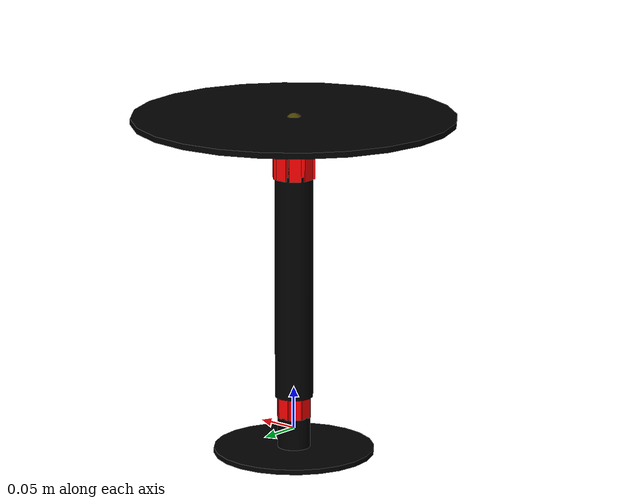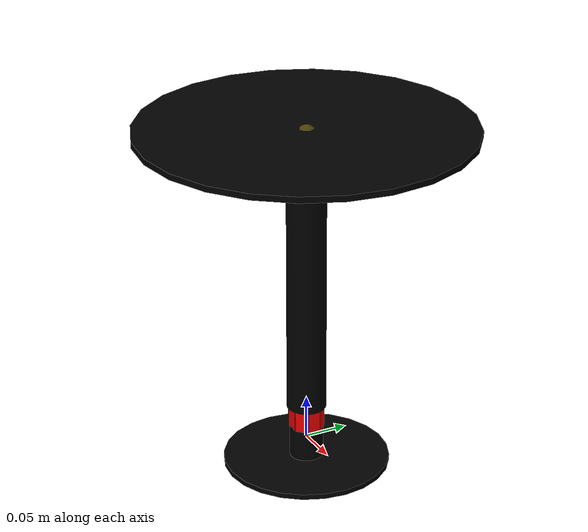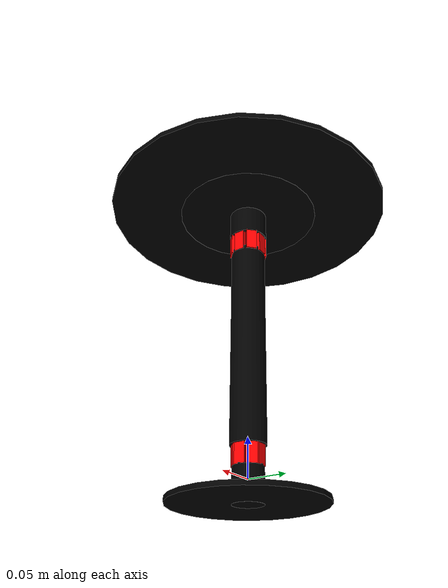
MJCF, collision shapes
<mujoco model="table_dockstra_0279">
  <custom>
    <numeric data="-0.332024 -0.069709 0.02821 0.999971 -0.0 -0.0 0.007559" name="0_part0_initpos" />
    <numeric data="-0.112954 -0.076936 0.026272 0.0 1.0 -9.4e-05 0.0" name="3_part3_initpos" />
    <numeric data="-0.316383 0.24 0.003274 0.0 0.082519 0.99659 0.0" name="2_part2_initpos" />
    <numeric data="0.01172 0.107275 0.022457 0.583591 -0.47236 0.52619 -0.399276" name="1_part1_initpos" />
  </custom>
  <asset>
    <mesh file="table_dockstra_0279/0.stl" name="part0" scale="0.0005 0.0005 0.0005" />
    <mesh file="table_dockstra_0279/3.stl" name="part3" scale="0.0005 0.0005 0.0005" />
    <mesh file="table_dockstra_0279/2.stl" name="part2" scale="0.0005 0.0005 0.0005" />
    <mesh file="table_dockstra_0279/1.stl" name="part1" scale="0.0005 0.0005 0.0005" />
  </asset>
  <equality>
    <weld active="false" body1="0_part0" body2="1_part1" solimp="1 1 0.5" solref="0.01 0.3" />
    <weld active="false" body1="3_part3" body2="1_part1" solimp="1 1 0.5" solref="0.01 0.3" />
    <weld active="false" body1="3_part3" body2="2_part2" solimp="1 1 0.5" solref="0.01 0.3" />
  </equality>
  <worldbody>
    <body name="0_part0" pos="-6.5e-10 2.5e-10 -2e-10" quat="1 0 0 0">
      <geom conaffinity="0" contype="0" density="0" mesh="part0" name="0_part0_mesh" pos="0.0 0.0 0.0" rgba="0.82 0.71 0.55 1" type="mesh" />
      <site name="0_part0_horizontal_radius_site" pos="0 0 0" quat="1 0 0 0" rgba="0 0 0 0" size="0.01" />
      <site name="0_part0_top_site" pos="0 0 0.0285" quat="1 0 0 0" rgba="0 0 0 0" size="0.01" />
      <site name="0_part0_bottom_site" pos="0 0 -0.0285" quat="1 0 0 0" rgba="0 0 0 0" size="0.01" />
      <site name="0_part0_corner_site8" pos="-0.09525 0.09525 0.02857" quat="1 0 0 0" rgba="0 0 0 0" size="0.01" />
      <site name="0_part0_corner_site7" pos="0.09525 0.09525 0.02857" quat="1 0 0 0" rgba="0 0 0 0" size="0.01" />
      <site name="0_part0_corner_site6" pos="0.09525 -0.09525 0.02857" quat="1 0 0 0" rgba="0 0 0 0" size="0.01" />
      <site name="0_part0_corner_site5" pos="-0.09525 -0.09525 0.02857" quat="1 0 0 0" rgba="0 0 0 0" size="0.01" />
      <site name="0_part0_corner_site4" pos="-0.09525 0.09525 -0.02857" quat="1 0 0 0" rgba="0 0 0 0" size="0.01" />
      <site name="0_part0_corner_site3" pos="0.09525 0.09525 -0.02857" quat="1 0 0 0" rgba="0 0 0 0" size="0.01" />
      <site name="0_part0_corner_site2" pos="0.09525 -0.09525 -0.02857" quat="1 0 0 0" rgba="0 0 0 0" size="0.01" />
      <site name="0_part0_corner_site1" pos="-0.09525 -0.09525 -0.02857" quat="1 0 0 0" rgba="0 0 0 0" size="0.01" />
      <site name="base-column,conn_site1" pos="0.0 0 0.0295" quat="1 0 0 0" rgba="0.9019 0.0980 0.2941 0.3" size="0.01" />
      <geom density="50" name="noviz_collision_0_part0_0" pos="0 0 -0.0252" quat="1 0 0 0" rgba="0 0 0 0" size="0.09525 0.003" solref="0.001 1" type="cylinder" />
      <geom density="50" name="noviz_collision_0_part0_1" pos="0 0 -0.00625" quat="1 0 0 0" rgba="0 0 0 0" size="0.01925 0.022" solref="0.001 1" type="cylinder" />
      <geom density="50" name="noviz_collision_0_part0_2" pos="0 0 0.022" quat="1 0 0 0" rgba="0 0 0 0" size="0.013 0.0075" solref="0.001 1" type="cylinder" />
    </body>
    <body name="3_part3" pos="0 0 0.3468" quat="1 0 0 0">
      <geom conaffinity="0" contype="0" density="0" mesh="part3" name="3_part3_mesh" pos="0.0 0.0 0.0" rgba="0.82 0.71 0.55 1" type="mesh" />
      <site group="1" name="3_part3_ltgt_site0" pos="0.02 0 -0.3" rgba="0 0 0 0" size="0.01 0.01 0.01" type="sphere" />
      <site group="1" name="3_part3_rtgt_site0" pos="-0.02 0 -0.3" rgba="0 0 0 0" size="0.01 0.01 0.01" type="sphere" />
      <site name="3_part3_horizontal_radius_site" pos="0.0 -0.0 0.0" quat="1 0 0 0" rgba="0 0 0 0" size="0.01" />
      <site name="3_part3_top_site" pos="0.0 0.0 0.02619" quat="1 0 0 0" rgba="0 0 0 0" size="0.01" />
      <site name="3_part3_bottom_site" pos="0.0 0.0 -0.02619" quat="1 0 0 0" rgba="0 0 0 0" size="0.01" />
      <site name="3_part3_corner_site8" pos="-0.09525 0.09525 0.02619" quat="1 0 0 0" rgba="0 0 0 0" size="0.01" />
      <site name="3_part3_corner_site7" pos="0.09525 0.09525 0.02619" quat="1 0 0 0" rgba="0 0 0 0" size="0.01" />
      <site name="3_part3_corner_site6" pos="0.09525 -0.09525 0.02619" quat="1 0 0 0" rgba="0 0 0 0" size="0.01" />
      <site name="3_part3_corner_site5" pos="-0.09525 -0.09525 0.02619" quat="1 0 0 0" rgba="0 0 0 0" size="0.01" />
      <site name="3_part3_corner_site4" pos="-0.09525 0.09525 -0.02619" quat="1 0 0 0" rgba="0 0 0 0" size="0.01" />
      <site name="3_part3_corner_site3" pos="0.09525 0.09525 -0.02619" quat="1 0 0 0" rgba="0 0 0 0" size="0.01" />
      <site name="3_part3_corner_site2" pos="0.09525 -0.09525 -0.02619" quat="1 0 0 0" rgba="0 0 0 0" size="0.01" />
      <site name="3_part3_corner_site1" pos="-0.09525 -0.09525 -0.02619" quat="1 0 0 0" rgba="0 0 0 0" size="0.01" />
      <site name="topsupp-column,conn_site2" pos="0.0 0.0 -0.0275" quat="1 0 0 0" rgba="0.2352 0.7058 0.2941 0.3" size="0.01" />
      <site name="topsupp-topplane,conn_site1" pos="0.0 0.0 0.0254" quat="1 0 0 0" rgba="1.0 0.8823 0.0980 0.3" size="0.01" />
      <geom density="50" name="noviz_collision_3_part3_0" pos="0 0 0.0253" quat="1 0 0 0" rgba="0 0 0 0" size="0.095 0.001" solref="0.001 1" type="cylinder" />
      <geom density="50" name="noviz_collision_3_part3_1" pos="0 0 0.00528125" quat="1 0 0 0" rgba="0 0 0 0" size="0.025 0.019" solref="0.001 1" type="cylinder" />
      <geom density="50" name="noviz_collision_3_part3_2" pos="0 0 -0.02" quat="1 0 0 0" rgba="0 0 0 0" size="0.013 0.0075" solref="0.001 1" type="cylinder" />
    </body>
    <body name="2_part2" pos="0 0 0.3746500065" quat="1 0 0 0">
      <geom conaffinity="0" contype="0" density="0" mesh="part2" name="2_part2_mesh" pos="0.0 0.0 0.0" rgba="0.82 0.71 0.55 1" type="mesh" />
      <site name="2_part2_horizontal_radius_site" pos="-6.5e-10 0.0 0.0" quat="1 0 0 0" rgba="0 0 0 0" size="0.01" />
      <site name="2_part2_top_site" pos="0 0.0 0.003175" quat="1 0 0 0" rgba="0 0 0 0" size="0.01" />
      <site name="2_part2_bottom_site" pos="0 0.0 -0.003175" quat="1 0 0 0" rgba="0 0 0 0" size="0.01" />
      <site name="2_part2_corner_site8" pos="-0.1905 0.1905 0.003175" quat="1 0 0 0" rgba="0 0 0 0" size="0.01" />
      <site name="2_part2_corner_site7" pos="0.1905 0.1905 0.003175" quat="1 0 0 0" rgba="0 0 0 0" size="0.01" />
      <site name="2_part2_corner_site6" pos="0.1905 -0.1905 0.003175" quat="1 0 0 0" rgba="0 0 0 0" size="0.01" />
      <site name="2_part2_corner_site5" pos="-0.1905 -0.1905 0.003175" quat="1 0 0 0" rgba="0 0 0 0" size="0.01" />
      <site name="2_part2_corner_site4" pos="-0.1905 0.1905 -0.003175" quat="1 0 0 0" rgba="0 0 0 0" size="0.01" />
      <site name="2_part2_corner_site3" pos="0.1905 0.1905 -0.003175" quat="1 0 0 0" rgba="0 0 0 0" size="0.01" />
      <site name="2_part2_corner_site2" pos="0.1905 -0.1905 -0.003175" quat="1 0 0 0" rgba="0 0 0 0" size="0.01" />
      <site name="2_part2_corner_site1" pos="-0.1905 -0.1905 -0.003175" quat="1 0 0 0" rgba="0 0 0 0" size="0.01" />
      <site name="topplane-topsupp,conn_site1" pos="0.0 0.0 -0.0035" quat="1 0 0 0" rgba="1.0 0.8823 0.0980 0.3" size="0.01" />
      <geom density="50" name="noviz_collision_2_part2_0" pos="0 0 0" quat="1 0 0 0" rgba="0 0 0 0" size="0.1905 0.0035" solref="0.001 1" type="cylinder" />
    </body>
    <body name="1_part1" pos="0 0 0.17462500035" quat="1 0 0 0">
      <geom conaffinity="0" contype="0" density="0" mesh="part1" name="1_part1_mesh" pos="0.0 0.0 0.0" rgba="0.82 0.71 0.55 1" type="mesh" />
      <site group="1" name="1_part1_ltgt_site0" pos="0.02 0 0.01" rgba="0 0 0 0" size="0.01 0.01 0.01" type="sphere" />
      <site group="1" name="1_part1_rtgt_site0" pos="-0.02 0 0.01" rgba="0 0 0 0" size="0.01 0.01 0.01" type="sphere" />
      <site group="1" name="1_part1_ltgt_site1" pos="0.02 0 -0.1" rgba="0 0 0 0" size="0.01 0.01 0.01" type="sphere" />
      <site group="1" name="1_part1_rtgt_site1" pos="-0.02 0 -0.1" rgba="0 0 0 0" size="0.01 0.01 0.01" type="sphere" />
      <site name="1_part1_horizontal_radius_site" pos="0.0 0.0 0.0" quat="1 0 0 0" rgba="0 0 0 0" size="0.01" />
      <site name="1_part1_top_site" pos="0.0 0.0 0.15875" quat="1 0 0 0" rgba="0 0 0 0" size="0.01" />
      <site name="1_part1_bottom_site" pos="0.0 0.0 -0.15875" quat="1 0 0 0" rgba="0 0 0 0" size="0.01" />
      <site name="1_part1_corner_site8" pos="-0.02632 0.02632 0.15875" quat="1 0 0 0" rgba="0 0 0 0" size="0.01" />
      <site name="1_part1_corner_site7" pos="0.02632 0.02632 0.15875" quat="1 0 0 0" rgba="0 0 0 0" size="0.01" />
      <site name="1_part1_corner_site6" pos="0.02632 -0.02632 0.15875" quat="1 0 0 0" rgba="0 0 0 0" size="0.01" />
      <site name="1_part1_corner_site5" pos="-0.02632 -0.02632 0.15875" quat="1 0 0 0" rgba="0 0 0 0" size="0.01" />
      <site name="1_part1_corner_site4" pos="-0.02632 0.02632 -0.15875" quat="1 0 0 0" rgba="0 0 0 0" size="0.01" />
      <site name="1_part1_corner_site3" pos="0.02632 0.02632 -0.15875" quat="1 0 0 0" rgba="0 0 0 0" size="0.01" />
      <site name="1_part1_corner_site2" pos="0.02632 -0.02632 -0.15875" quat="1 0 0 0" rgba="0 0 0 0" size="0.01" />
      <site name="1_part1_corner_site1" pos="-0.02632 -0.02632 -0.15875" quat="1 0 0 0" rgba="0 0 0 0" size="0.01" />
      <site name="column-base,conn_site1" pos="0.0 0 -0.135" quat="1 0 0 0" rgba="0.9019 0.0980 0.2941 0.3" size="0.01" />
      <site name="column-topsupp,conn_site2" pos="0.0 0.0 0.135" quat="1 0 0 0" rgba="0.2352 0.7058 0.2941 0.3" size="0.01" />
      <geom density="50" name="noviz_collision_1_part1_0" pos="0 0 0.000125" quat="1 0 0 0" rgba="0 0 0 0" size="0.0225 0.135" solref="0.001 1" type="cylinder" />

      <geom density="50" name="noviz_collision_1_part1_1" pos="-0.00 -0.018 -0.145" quat="1 0 0 0" rgba="1 0 0 1" size="0.007 0.001 0.015" solref="0.001 1" type="box" />
      <geom density="50" name="noviz_collision_1_part1_2" pos="-0.00 0.018 -0.145" quat="1 0 0 0" rgba="1 0 0 1" size="0.007 0.001 0.015" solref="0.001 1" type="box" />
      <geom density="50" name="noviz_collision_1_part1_3" pos="-0.013 -0.013 -0.145" quat="0.9238796 0 0 -0.3826834" rgba="1 0 0 1" size="0.007 0.001 0.015" solref="0.001 1" type="box" />
      <geom density="50" name="noviz_collision_1_part1_4" pos="0.018 0.00 -0.145" quat="0.7071067 0 0 -0.7071068" rgba="1 0 0 1" size="0.007 0.001 0.015" solref="0.001 1" type="box" />
      <geom density="50" name="noviz_collision_1_part1_5" pos="-0.018 0.00 -0.145" quat="0.7071067 0 0 -0.7071068" rgba="1 0 0 1" size="0.007 0.001 0.015" solref="0.001 1" type="box" />
      <geom density="50" name="noviz_collision_1_part1_6" pos="0.013 0.013 -0.145" quat="0.9238796 0 0 -0.3826834" rgba="1 0 0 1" size="0.007 0.001 0.015" solref="0.001 1" type="box" />
      <geom density="50" name="noviz_collision_1_part1_7" pos="-0.013 0.013 -0.145" quat="0.9238796 0 0 0.3826834" rgba="1 0 0 1" size="0.007 0.001 0.015" solref="0.001 1" type="box" />
      <geom density="50" name="noviz_collision_1_part1_8" pos="0.013 -0.013 -0.145" quat="0.9238796 0 0 0.3826834" rgba="1 0 0 1" size="0.007 0.001 0.015" solref="0.001 1" type="box" />

      <geom density="50" name="noviz_collision_1_part1_11" pos="-0.00 -0.02 0.145" quat="1 0 0 0" rgba="1 0 0 1" size="0.007 0.003 0.015" solref="0.001 1" type="box" />
      <geom density="50" name="noviz_collision_1_part1_12" pos="-0.00 0.02 0.145" quat="1 0 0 0" rgba="1 0 0 1" size="0.007 0.003 0.015" solref="0.001 1" type="box" />
      <geom density="50" name="noviz_collision_1_part1_13" pos="-0.015 -0.015 0.145" quat="0.9238796 0 0 -0.3826834" rgba="1 0 0 1" size="0.007 0.003 0.015" solref="0.001 1" type="box" />
      <geom density="50" name="noviz_collision_1_part1_14" pos="0.02 0.00 0.145" quat="0.7071067 0 0 -0.7071068" rgba="1 0 0 1" size="0.007 0.003 0.015" solref="0.001 1" type="box" />
      <geom density="50" name="noviz_collision_1_part1_15" pos="-0.02 0.00 0.145" quat="0.7071067 0 0 -0.7071068" rgba="1 0 0 1" size="0.007 0.003 0.015" solref="0.001 1" type="box" />
      <geom density="50" name="noviz_collision_1_part1_16" pos="0.015 0.015 0.145" quat="0.9238796 0 0 -0.3826834" rgba="1 0 0 1" size="0.007 0.003 0.015" solref="0.001 1" type="box" />
      <geom density="50" name="noviz_collision_1_part1_17" pos="-0.015 0.015 0.145" quat="0.9238796 0 0 0.3826834" rgba="1 0 0 1" size="0.007 0.003 0.015" solref="0.001 1" type="box" />
      <geom density="50" name="noviz_collision_1_part1_18" pos="0.015 -0.015 0.145" quat="0.9238796 0 0 0.3826834" rgba="1 0 0 1" size="0.007 0.003 0.015" solref="0.001 1" type="box" />
    </body>
  </worldbody>
<actuator /><sensor /><contact /><default /></mujoco>
